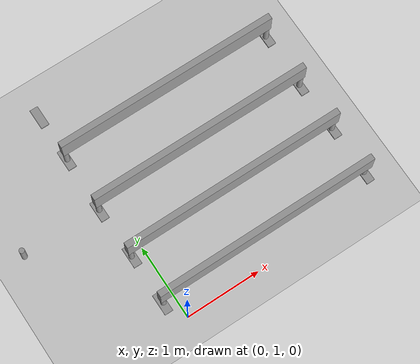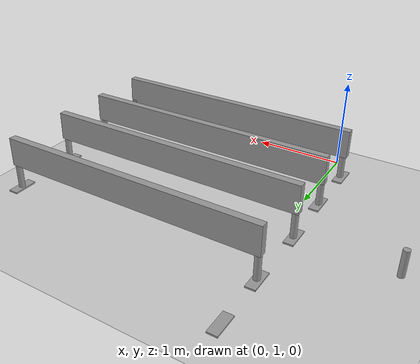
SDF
<sdf version="1.6">
 <world name="default">
  <model name="ground_plane">
   <static>1</static>
   <link name="link">
    <collision name="collision">
     <geometry><plane><normal>0 0 1</normal><size>100 100</size></plane></geometry>
     <surface><friction><ode><mu>100</mu><mu2>50</mu2></ode></friction></surface>
    </collision>
    <visual name="visual">
     <cast_shadows>0</cast_shadows>
     <geometry><plane><normal>0 0 1</normal><size>100 100</size></plane></geometry>
     <material>
      <script><uri>file://media/materials/scripts/gazebo.material</uri><name>Gazebo/Grey</name></script>
     </material>
    </visual>
   </link>
  </model>
  <model name="banchi">
   <link name="link_0_clone_10">
    <inertial>
     <mass>0.000785881</mass>
     <inertia>
      <ixx>5.11476e-06</ixx>
      <ixy>0</ixy>
      <ixz>0</ixz>
      <iyy>8.37345e-07</iyy>
      <iyz>0</iyz>
      <izz>5.8658e-06</izz>
     </inertia>
    </inertial>
    <pose>-0.67038 -5.15029 -0.495327 0 -0 0</pose>
    <visual name="visual">
     <geometry><box><size>0.110122 0.278282 0.025669</size></box></geometry>
     <material>
      <lighting>1</lighting>
      <script><uri>file://media/materials/scripts/gazebo.material</uri><name>Gazebo/Grey</name></script>
      <shader type="pixel"/>
     </material>
    </visual>
    <collision name="collision">
     <geometry><box><size>0.110122 0.278282 0.025669</size></box></geometry>
     <surface>
      <friction>
       <ode><mu>1</mu><mu2>1</mu2><fdir1>0 0 0</fdir1><slip1>0</slip1><slip2>0</slip2></ode>
       <torsional>
        <coefficient>1</coefficient>
        <patch_radius>0</patch_radius>
        <surface_radius>0</surface_radius>
        <use_patch_radius>1</use_patch_radius>
        <ode><slip>0</slip></ode>
       </torsional>
      </friction>
      <bounce><restitution_coefficient>0</restitution_coefficient><threshold>1e+06</threshold></bounce>
      <contact>
       <collide_without_contact>0</collide_without_contact>
       <collide_without_contact_bitmask>1</collide_without_contact_bitmask>
       <collide_bitmask>1</collide_bitmask>
       <ode>
        <soft_cfm>0</soft_cfm>
        <soft_erp>0.2</soft_erp>
        <kp>1e+13</kp>
        <kd>1</kd>
        <max_vel>0.01</max_vel>
        <min_depth>0</min_depth>
       </ode>
       <bullet>
        <split_impulse>1</split_impulse>
        <split_impulse_penetration_threshold>-0.01</split_impulse_penetration_threshold>
        <soft_cfm>0</soft_cfm>
        <soft_erp>0.2</soft_erp>
        <kp>1e+13</kp>
        <kd>1</kd>
       </bullet>
      </contact>
     </surface>
    </collision>
   </link>
   <link name="link_0_clone_2">
    <inertial>
     <mass>0.000785881</mass>
     <inertia>
      <ixx>5.11476e-06</ixx>
      <ixy>0</ixy>
      <ixz>0</ixz>
      <iyy>8.37345e-07</iyy>
      <iyz>0</iyz>
      <izz>5.8658e-06</izz>
     </inertia>
    </inertial>
    <pose>2.25946 -5.79798 -0.495327 0 -0 0</pose>
    <visual name="visual">
     <geometry><box><size>0.110122 0.278282 0.025669</size></box></geometry>
     <material>
      <lighting>1</lighting>
      <script><uri>file://media/materials/scripts/gazebo.material</uri><name>Gazebo/Grey</name></script>
      <shader type="pixel"/>
     </material>
    </visual>
    <collision name="collision">
     <geometry><box><size>0.110122 0.278282 0.025669</size></box></geometry>
     <surface>
      <friction>
       <ode><mu>1</mu><mu2>1</mu2><fdir1>0 0 0</fdir1><slip1>0</slip1><slip2>0</slip2></ode>
       <torsional>
        <coefficient>1</coefficient>
        <patch_radius>0</patch_radius>
        <surface_radius>0</surface_radius>
        <use_patch_radius>1</use_patch_radius>
        <ode><slip>0</slip></ode>
       </torsional>
      </friction>
      <bounce><restitution_coefficient>0</restitution_coefficient><threshold>1e+06</threshold></bounce>
      <contact>
       <collide_without_contact>0</collide_without_contact>
       <collide_without_contact_bitmask>1</collide_without_contact_bitmask>
       <collide_bitmask>1</collide_bitmask>
       <ode>
        <soft_cfm>0</soft_cfm>
        <soft_erp>0.2</soft_erp>
        <kp>1e+13</kp>
        <kd>1</kd>
        <max_vel>0.01</max_vel>
        <min_depth>0</min_depth>
       </ode>
       <bullet>
        <split_impulse>1</split_impulse>
        <split_impulse_penetration_threshold>-0.01</split_impulse_penetration_threshold>
        <soft_cfm>0</soft_cfm>
        <soft_erp>0.2</soft_erp>
        <kp>1e+13</kp>
        <kd>1</kd>
       </bullet>
      </contact>
     </surface>
    </collision>
   </link>
   <link name="link_0_clone_3">
    <inertial>
     <mass>0.000785881</mass>
     <inertia>
      <ixx>5.11476e-06</ixx>
      <ixy>0</ixy>
      <ixz>0</ixz>
      <iyy>8.37345e-07</iyy>
      <iyz>0</iyz>
      <izz>5.8658e-06</izz>
     </inertia>
    </inertial>
    <pose>2.2389 -6.5578 -0.495327 0 -0 0</pose>
    <visual name="visual">
     <geometry><box><size>0.110122 0.278282 0.025669</size></box></geometry>
     <material>
      <lighting>1</lighting>
      <script><uri>file://media/materials/scripts/gazebo.material</uri><name>Gazebo/Grey</name></script>
      <shader type="pixel"/>
     </material>
    </visual>
    <collision name="collision">
     <geometry><box><size>0.110122 0.278282 0.025669</size></box></geometry>
     <surface>
      <friction>
       <ode><mu>1</mu><mu2>1</mu2><fdir1>0 0 0</fdir1><slip1>0</slip1><slip2>0</slip2></ode>
       <torsional>
        <coefficient>1</coefficient>
        <patch_radius>0</patch_radius>
        <surface_radius>0</surface_radius>
        <use_patch_radius>1</use_patch_radius>
        <ode><slip>0</slip></ode>
       </torsional>
      </friction>
      <bounce><restitution_coefficient>0</restitution_coefficient><threshold>1e+06</threshold></bounce>
      <contact>
       <collide_without_contact>0</collide_without_contact>
       <collide_without_contact_bitmask>1</collide_without_contact_bitmask>
       <collide_bitmask>1</collide_bitmask>
       <ode>
        <soft_cfm>0</soft_cfm>
        <soft_erp>0.2</soft_erp>
        <kp>1e+13</kp>
        <kd>1</kd>
        <max_vel>0.01</max_vel>
        <min_depth>0</min_depth>
       </ode>
       <bullet>
        <split_impulse>1</split_impulse>
        <split_impulse_penetration_threshold>-0.01</split_impulse_penetration_threshold>
        <soft_cfm>0</soft_cfm>
        <soft_erp>0.2</soft_erp>
        <kp>1e+13</kp>
        <kd>1</kd>
       </bullet>
      </contact>
     </surface>
    </collision>
   </link>
   <link name="link_0_clone_4">
    <inertial>
     <mass>0.000785881</mass>
     <inertia>
      <ixx>5.11476e-06</ixx>
      <ixy>0</ixy>
      <ixz>0</ixz>
      <iyy>8.37345e-07</iyy>
      <iyz>0</iyz>
      <izz>5.8658e-06</izz>
     </inertia>
    </inertial>
    <pose>2.25257 -7.24463 -0.495327 0 -0 0</pose>
    <visual name="visual">
     <geometry><box><size>0.110122 0.278282 0.025669</size></box></geometry>
     <material>
      <lighting>1</lighting>
      <script><uri>file://media/materials/scripts/gazebo.material</uri><name>Gazebo/Grey</name></script>
      <shader type="pixel"/>
     </material>
    </visual>
    <collision name="collision">
     <geometry><box><size>0.110122 0.278282 0.025669</size></box></geometry>
     <surface>
      <friction>
       <ode><mu>1</mu><mu2>1</mu2><fdir1>0 0 0</fdir1><slip1>0</slip1><slip2>0</slip2></ode>
       <torsional>
        <coefficient>1</coefficient>
        <patch_radius>0</patch_radius>
        <surface_radius>0</surface_radius>
        <use_patch_radius>1</use_patch_radius>
        <ode><slip>0</slip></ode>
       </torsional>
      </friction>
      <bounce><restitution_coefficient>0</restitution_coefficient><threshold>1e+06</threshold></bounce>
      <contact>
       <collide_without_contact>0</collide_without_contact>
       <collide_without_contact_bitmask>1</collide_without_contact_bitmask>
       <collide_bitmask>1</collide_bitmask>
       <ode>
        <soft_cfm>0</soft_cfm>
        <soft_erp>0.2</soft_erp>
        <kp>1e+13</kp>
        <kd>1</kd>
        <max_vel>0.01</max_vel>
        <min_depth>0</min_depth>
       </ode>
       <bullet>
        <split_impulse>1</split_impulse>
        <split_impulse_penetration_threshold>-0.01</split_impulse_penetration_threshold>
        <soft_cfm>0</soft_cfm>
        <soft_erp>0.2</soft_erp>
        <kp>1e+13</kp>
        <kd>1</kd>
       </bullet>
      </contact>
     </surface>
    </collision>
   </link>
   <link name="link_0_clone_5">
    <inertial>
     <mass>0.000785881</mass>
     <inertia>
      <ixx>5.11476e-06</ixx>
      <ixy>0</ixy>
      <ixz>0</ixz>
      <iyy>8.37345e-07</iyy>
      <iyz>0</iyz>
      <izz>5.8658e-06</izz>
     </inertia>
    </inertial>
    <pose>2.25123 -7.92961 -0.495327 0 -0 0</pose>
    <visual name="visual">
     <geometry><box><size>0.110122 0.278282 0.025669</size></box></geometry>
     <material>
      <lighting>1</lighting>
      <script><uri>file://media/materials/scripts/gazebo.material</uri><name>Gazebo/Grey</name></script>
      <shader type="pixel"/>
     </material>
    </visual>
    <collision name="collision">
     <geometry><box><size>0.110122 0.278282 0.025669</size></box></geometry>
     <surface>
      <friction>
       <ode><mu>1</mu><mu2>1</mu2><fdir1>0 0 0</fdir1><slip1>0</slip1><slip2>0</slip2></ode>
       <torsional>
        <coefficient>1</coefficient>
        <patch_radius>0</patch_radius>
        <surface_radius>0</surface_radius>
        <use_patch_radius>1</use_patch_radius>
        <ode><slip>0</slip></ode>
       </torsional>
      </friction>
      <bounce><restitution_coefficient>0</restitution_coefficient><threshold>1e+06</threshold></bounce>
      <contact>
       <collide_without_contact>0</collide_without_contact>
       <collide_without_contact_bitmask>1</collide_without_contact_bitmask>
       <collide_bitmask>1</collide_bitmask>
       <ode>
        <soft_cfm>0</soft_cfm>
        <soft_erp>0.2</soft_erp>
        <kp>1e+13</kp>
        <kd>1</kd>
        <max_vel>0.01</max_vel>
        <min_depth>0</min_depth>
       </ode>
       <bullet>
        <split_impulse>1</split_impulse>
        <split_impulse_penetration_threshold>-0.01</split_impulse_penetration_threshold>
        <soft_cfm>0</soft_cfm>
        <soft_erp>0.2</soft_erp>
        <kp>1e+13</kp>
        <kd>1</kd>
       </bullet>
      </contact>
     </surface>
    </collision>
   </link>
   <link name="link_0_clone_6">
    <inertial>
     <mass>0.000785881</mass>
     <inertia>
      <ixx>5.11476e-06</ixx>
      <ixy>0</ixy>
      <ixz>0</ixz>
      <iyy>8.37345e-07</iyy>
      <iyz>0</iyz>
      <izz>5.8658e-06</izz>
     </inertia>
    </inertial>
    <pose>-0.667679 -7.92898 -0.495327 0 -0 0</pose>
    <visual name="visual">
     <geometry><box><size>0.110122 0.278282 0.025669</size></box></geometry>
     <material>
      <lighting>1</lighting>
      <script><uri>file://media/materials/scripts/gazebo.material</uri><name>Gazebo/Grey</name></script>
      <shader type="pixel"/>
     </material>
    </visual>
    <collision name="collision">
     <geometry><box><size>0.110122 0.278282 0.025669</size></box></geometry>
     <surface>
      <friction>
       <ode><mu>1</mu><mu2>1</mu2><fdir1>0 0 0</fdir1><slip1>0</slip1><slip2>0</slip2></ode>
       <torsional>
        <coefficient>1</coefficient>
        <patch_radius>0</patch_radius>
        <surface_radius>0</surface_radius>
        <use_patch_radius>1</use_patch_radius>
        <ode><slip>0</slip></ode>
       </torsional>
      </friction>
      <bounce><restitution_coefficient>0</restitution_coefficient><threshold>1e+06</threshold></bounce>
      <contact>
       <collide_without_contact>0</collide_without_contact>
       <collide_without_contact_bitmask>1</collide_without_contact_bitmask>
       <collide_bitmask>1</collide_bitmask>
       <ode>
        <soft_cfm>0</soft_cfm>
        <soft_erp>0.2</soft_erp>
        <kp>1e+13</kp>
        <kd>1</kd>
        <max_vel>0.01</max_vel>
        <min_depth>0</min_depth>
       </ode>
       <bullet>
        <split_impulse>1</split_impulse>
        <split_impulse_penetration_threshold>-0.01</split_impulse_penetration_threshold>
        <soft_cfm>0</soft_cfm>
        <soft_erp>0.2</soft_erp>
        <kp>1e+13</kp>
        <kd>1</kd>
       </bullet>
      </contact>
     </surface>
    </collision>
   </link>
   <link name="link_0_clone_7">
    <inertial>
     <mass>0.000785881</mass>
     <inertia>
      <ixx>5.11476e-06</ixx>
      <ixy>0</ixy>
      <ixz>0</ixz>
      <iyy>8.37345e-07</iyy>
      <iyz>0</iyz>
      <izz>5.8658e-06</izz>
     </inertia>
    </inertial>
    <pose>-0.663477 -7.25184 -0.495327 0 -0 0</pose>
    <visual name="visual">
     <geometry><box><size>0.110122 0.278282 0.025669</size></box></geometry>
     <material>
      <lighting>1</lighting>
      <script><uri>file://media/materials/scripts/gazebo.material</uri><name>Gazebo/Grey</name></script>
      <shader type="pixel"/>
     </material>
    </visual>
    <collision name="collision">
     <geometry><box><size>0.110122 0.278282 0.025669</size></box></geometry>
     <surface>
      <friction>
       <ode><mu>1</mu><mu2>1</mu2><fdir1>0 0 0</fdir1><slip1>0</slip1><slip2>0</slip2></ode>
       <torsional>
        <coefficient>1</coefficient>
        <patch_radius>0</patch_radius>
        <surface_radius>0</surface_radius>
        <use_patch_radius>1</use_patch_radius>
        <ode><slip>0</slip></ode>
       </torsional>
      </friction>
      <bounce><restitution_coefficient>0</restitution_coefficient><threshold>1e+06</threshold></bounce>
      <contact>
       <collide_without_contact>0</collide_without_contact>
       <collide_without_contact_bitmask>1</collide_without_contact_bitmask>
       <collide_bitmask>1</collide_bitmask>
       <ode>
        <soft_cfm>0</soft_cfm>
        <soft_erp>0.2</soft_erp>
        <kp>1e+13</kp>
        <kd>1</kd>
        <max_vel>0.01</max_vel>
        <min_depth>0</min_depth>
       </ode>
       <bullet>
        <split_impulse>1</split_impulse>
        <split_impulse_penetration_threshold>-0.01</split_impulse_penetration_threshold>
        <soft_cfm>0</soft_cfm>
        <soft_erp>0.2</soft_erp>
        <kp>1e+13</kp>
        <kd>1</kd>
       </bullet>
      </contact>
     </surface>
    </collision>
   </link>
   <link name="link_0_clone_8">
    <inertial>
     <mass>0.000785881</mass>
     <inertia>
      <ixx>5.11476e-06</ixx>
      <ixy>0</ixy>
      <ixz>0</ixz>
      <iyy>8.37345e-07</iyy>
      <iyz>0</iyz>
      <izz>5.8658e-06</izz>
     </inertia>
    </inertial>
    <pose>-0.687116 -6.5613 -0.495327 0 -0 0</pose>
    <visual name="visual">
     <geometry><box><size>0.110122 0.278282 0.025669</size></box></geometry>
     <material>
      <lighting>1</lighting>
      <script><uri>file://media/materials/scripts/gazebo.material</uri><name>Gazebo/Grey</name></script>
      <shader type="pixel"/>
     </material>
    </visual>
    <collision name="collision">
     <geometry><box><size>0.110122 0.278282 0.025669</size></box></geometry>
     <surface>
      <friction>
       <ode><mu>1</mu><mu2>1</mu2><fdir1>0 0 0</fdir1><slip1>0</slip1><slip2>0</slip2></ode>
       <torsional>
        <coefficient>1</coefficient>
        <patch_radius>0</patch_radius>
        <surface_radius>0</surface_radius>
        <use_patch_radius>1</use_patch_radius>
        <ode><slip>0</slip></ode>
       </torsional>
      </friction>
      <bounce><restitution_coefficient>0</restitution_coefficient><threshold>1e+06</threshold></bounce>
      <contact>
       <collide_without_contact>0</collide_without_contact>
       <collide_without_contact_bitmask>1</collide_without_contact_bitmask>
       <collide_bitmask>1</collide_bitmask>
       <ode>
        <soft_cfm>0</soft_cfm>
        <soft_erp>0.2</soft_erp>
        <kp>1e+13</kp>
        <kd>1</kd>
        <max_vel>0.01</max_vel>
        <min_depth>0</min_depth>
       </ode>
       <bullet>
        <split_impulse>1</split_impulse>
        <split_impulse_penetration_threshold>-0.01</split_impulse_penetration_threshold>
        <soft_cfm>0</soft_cfm>
        <soft_erp>0.2</soft_erp>
        <kp>1e+13</kp>
        <kd>1</kd>
       </bullet>
      </contact>
     </surface>
    </collision>
   </link>
   <link name="link_0_clone_9">
    <inertial>
     <mass>0.000785881</mass>
     <inertia>
      <ixx>5.11476e-06</ixx>
      <ixy>0</ixy>
      <ixz>0</ixz>
      <iyy>8.37345e-07</iyy>
      <iyz>0</iyz>
      <izz>5.8658e-06</izz>
     </inertia>
    </inertial>
    <pose>-0.67421 -5.79412 -0.495327 0 -0 0</pose>
    <visual name="visual">
     <geometry><box><size>0.110122 0.278282 0.025669</size></box></geometry>
     <material>
      <lighting>1</lighting>
      <script><uri>file://media/materials/scripts/gazebo.material</uri><name>Gazebo/Grey</name></script>
      <shader type="pixel"/>
     </material>
    </visual>
    <collision name="collision">
     <geometry><box><size>0.110122 0.278282 0.025669</size></box></geometry>
     <surface>
      <friction>
       <ode><mu>1</mu><mu2>1</mu2><fdir1>0 0 0</fdir1><slip1>0</slip1><slip2>0</slip2></ode>
       <torsional>
        <coefficient>1</coefficient>
        <patch_radius>0</patch_radius>
        <surface_radius>0</surface_radius>
        <use_patch_radius>1</use_patch_radius>
        <ode><slip>0</slip></ode>
       </torsional>
      </friction>
      <bounce><restitution_coefficient>0</restitution_coefficient><threshold>1e+06</threshold></bounce>
      <contact>
       <collide_without_contact>0</collide_without_contact>
       <collide_without_contact_bitmask>1</collide_without_contact_bitmask>
       <collide_bitmask>1</collide_bitmask>
       <ode>
        <soft_cfm>0</soft_cfm>
        <soft_erp>0.2</soft_erp>
        <kp>1e+13</kp>
        <kd>1</kd>
        <max_vel>0.01</max_vel>
        <min_depth>0</min_depth>
       </ode>
       <bullet>
        <split_impulse>1</split_impulse>
        <split_impulse_penetration_threshold>-0.01</split_impulse_penetration_threshold>
        <soft_cfm>0</soft_cfm>
        <soft_erp>0.2</soft_erp>
        <kp>1e+13</kp>
        <kd>1</kd>
       </bullet>
      </contact>
     </surface>
    </collision>
   </link>
   <link name="link_6_clone_clone_1">
    <pose>0.790452 -5.7947 -0.037275 0 -0 0</pose>
    <inertial>
     <mass>0.0822689</mass>
     <inertia>
      <ixx>0.00690216</ixx>
      <ixy>0</ixy>
      <ixz>0</ixz>
      <iyy>0.0137115</iyy>
      <iyz>0</iyz>
      <izz>0.00690216</izz>
     </inertia>
    </inertial>
    <visual name="visual">
     <geometry><box><size>3 0.082269 0.32559</size></box></geometry>
     <material>
      <lighting>1</lighting>
      <script><uri>file://media/materials/scripts/gazebo.material</uri><name>Gazebo/Grey</name></script>
      <ambient>0.3 0.3 0.3 1</ambient>
      <diffuse>0.7 0.7 0.7 1</diffuse>
      <specular>0.01 0.01 0.01 1</specular>
      <emissive>0 0 0 1</emissive>
      <shader type="vertex"><normal_map>__default__</normal_map></shader>
     </material>
    </visual>
    <collision name="collision">
     <geometry><box><size>3 0.082269 0.32559</size></box></geometry>
     <surface>
      <friction>
       <ode><mu>1</mu><mu2>1</mu2><fdir1>0 0 0</fdir1><slip1>0</slip1><slip2>0</slip2></ode>
       <torsional>
        <coefficient>1</coefficient>
        <patch_radius>0</patch_radius>
        <surface_radius>0</surface_radius>
        <use_patch_radius>1</use_patch_radius>
        <ode><slip>0</slip></ode>
       </torsional>
      </friction>
      <bounce><restitution_coefficient>0</restitution_coefficient><threshold>1e+06</threshold></bounce>
      <contact>
       <collide_without_contact>0</collide_without_contact>
       <collide_without_contact_bitmask>1</collide_without_contact_bitmask>
       <collide_bitmask>1</collide_bitmask>
       <ode>
        <soft_cfm>0</soft_cfm>
        <soft_erp>0.2</soft_erp>
        <kp>1e+13</kp>
        <kd>1</kd>
        <max_vel>0.01</max_vel>
        <min_depth>0</min_depth>
       </ode>
       <bullet>
        <split_impulse>1</split_impulse>
        <split_impulse_penetration_threshold>-0.01</split_impulse_penetration_threshold>
        <soft_cfm>0</soft_cfm>
        <soft_erp>0.2</soft_erp>
        <kp>1e+13</kp>
        <kd>1</kd>
       </bullet>
      </contact>
     </surface>
    </collision>
   </link>
   <link name="link_6_clone_clone_2">
    <pose>0.7731 -6.55478 -0.030557 0 -0 0</pose>
    <inertial>
     <mass>0.0822689</mass>
     <inertia>
      <ixx>0.00690216</ixx>
      <ixy>0</ixy>
      <ixz>0</ixz>
      <iyy>0.0137115</iyy>
      <iyz>0</iyz>
      <izz>0.00690216</izz>
     </inertia>
    </inertial>
    <visual name="visual">
     <geometry><box><size>3 0.082269 0.32559</size></box></geometry>
     <material>
      <lighting>1</lighting>
      <script><uri>file://media/materials/scripts/gazebo.material</uri><name>Gazebo/Grey</name></script>
      <ambient>0.3 0.3 0.3 1</ambient>
      <diffuse>0.7 0.7 0.7 1</diffuse>
      <specular>0.01 0.01 0.01 1</specular>
      <emissive>0 0 0 1</emissive>
      <shader type="vertex"><normal_map>__default__</normal_map></shader>
     </material>
    </visual>
    <collision name="collision">
     <geometry><box><size>3 0.082269 0.32559</size></box></geometry>
     <surface>
      <friction>
       <ode><mu>1</mu><mu2>1</mu2><fdir1>0 0 0</fdir1><slip1>0</slip1><slip2>0</slip2></ode>
       <torsional>
        <coefficient>1</coefficient>
        <patch_radius>0</patch_radius>
        <surface_radius>0</surface_radius>
        <use_patch_radius>1</use_patch_radius>
        <ode><slip>0</slip></ode>
       </torsional>
      </friction>
      <bounce><restitution_coefficient>0</restitution_coefficient><threshold>1e+06</threshold></bounce>
      <contact>
       <collide_without_contact>0</collide_without_contact>
       <collide_without_contact_bitmask>1</collide_without_contact_bitmask>
       <collide_bitmask>1</collide_bitmask>
       <ode>
        <soft_cfm>0</soft_cfm>
        <soft_erp>0.2</soft_erp>
        <kp>1e+13</kp>
        <kd>1</kd>
        <max_vel>0.01</max_vel>
        <min_depth>0</min_depth>
       </ode>
       <bullet>
        <split_impulse>1</split_impulse>
        <split_impulse_penetration_threshold>-0.01</split_impulse_penetration_threshold>
        <soft_cfm>0</soft_cfm>
        <soft_erp>0.2</soft_erp>
        <kp>1e+13</kp>
        <kd>1</kd>
       </bullet>
      </contact>
     </surface>
    </collision>
   </link>
   <link name="link_6_clone_clone_3">
    <pose>0.787315 -7.24478 -0.053907 0 -0 0</pose>
    <inertial>
     <mass>0.0822689</mass>
     <inertia>
      <ixx>0.00690216</ixx>
      <ixy>0</ixy>
      <ixz>0</ixz>
      <iyy>0.0137115</iyy>
      <iyz>0</iyz>
      <izz>0.00690216</izz>
     </inertia>
    </inertial>
    <visual name="visual">
     <geometry><box><size>3 0.082269 0.32559</size></box></geometry>
     <material>
      <lighting>1</lighting>
      <script><uri>file://media/materials/scripts/gazebo.material</uri><name>Gazebo/Grey</name></script>
      <ambient>0.3 0.3 0.3 1</ambient>
      <diffuse>0.7 0.7 0.7 1</diffuse>
      <specular>0.01 0.01 0.01 1</specular>
      <emissive>0 0 0 1</emissive>
      <shader type="vertex"><normal_map>__default__</normal_map></shader>
     </material>
    </visual>
    <collision name="collision">
     <geometry><box><size>3 0.082269 0.32559</size></box></geometry>
     <surface>
      <friction>
       <ode><mu>1</mu><mu2>1</mu2><fdir1>0 0 0</fdir1><slip1>0</slip1><slip2>0</slip2></ode>
       <torsional>
        <coefficient>1</coefficient>
        <patch_radius>0</patch_radius>
        <surface_radius>0</surface_radius>
        <use_patch_radius>1</use_patch_radius>
        <ode><slip>0</slip></ode>
       </torsional>
      </friction>
      <bounce><restitution_coefficient>0</restitution_coefficient><threshold>1e+06</threshold></bounce>
      <contact>
       <collide_without_contact>0</collide_without_contact>
       <collide_without_contact_bitmask>1</collide_without_contact_bitmask>
       <collide_bitmask>1</collide_bitmask>
       <ode>
        <soft_cfm>0</soft_cfm>
        <soft_erp>0.2</soft_erp>
        <kp>1e+13</kp>
        <kd>1</kd>
        <max_vel>0.01</max_vel>
        <min_depth>0</min_depth>
       </ode>
       <bullet>
        <split_impulse>1</split_impulse>
        <split_impulse_penetration_threshold>-0.01</split_impulse_penetration_threshold>
        <soft_cfm>0</soft_cfm>
        <soft_erp>0.2</soft_erp>
        <kp>1e+13</kp>
        <kd>1</kd>
       </bullet>
      </contact>
     </surface>
    </collision>
   </link>
   <link name="link_6_clone_clone_3_clone">
    <pose>0.794683 -7.93344 -0.056654 0 -0 0</pose>
    <inertial>
     <mass>0.0822689</mass>
     <inertia>
      <ixx>0.00690216</ixx>
      <ixy>0</ixy>
      <ixz>0</ixz>
      <iyy>0.0137115</iyy>
      <iyz>0</iyz>
      <izz>0.00690216</izz>
     </inertia>
    </inertial>
    <visual name="visual">
     <geometry><box><size>3 0.082269 0.32559</size></box></geometry>
     <material>
      <lighting>1</lighting>
      <script><uri>file://media/materials/scripts/gazebo.material</uri><name>Gazebo/Grey</name></script>
      <ambient>0.3 0.3 0.3 1</ambient>
      <diffuse>0.7 0.7 0.7 1</diffuse>
      <specular>0.01 0.01 0.01 1</specular>
      <emissive>0 0 0 1</emissive>
      <shader type="vertex"><normal_map>__default__</normal_map></shader>
     </material>
    </visual>
    <collision name="collision">
     <geometry><box><size>3 0.082269 0.32559</size></box></geometry>
     <surface>
      <friction>
       <ode><mu>1</mu><mu2>1</mu2><fdir1>0 0 0</fdir1><slip1>0</slip1><slip2>0</slip2></ode>
       <torsional>
        <coefficient>1</coefficient>
        <patch_radius>0</patch_radius>
        <surface_radius>0</surface_radius>
        <use_patch_radius>1</use_patch_radius>
        <ode><slip>0</slip></ode>
       </torsional>
      </friction>
      <bounce><restitution_coefficient>0</restitution_coefficient><threshold>1e+06</threshold></bounce>
      <contact>
       <collide_without_contact>0</collide_without_contact>
       <collide_without_contact_bitmask>1</collide_without_contact_bitmask>
       <collide_bitmask>1</collide_bitmask>
       <ode>
        <soft_cfm>0</soft_cfm>
        <soft_erp>0.2</soft_erp>
        <kp>1e+13</kp>
        <kd>1</kd>
        <max_vel>0.01</max_vel>
        <min_depth>0</min_depth>
       </ode>
       <bullet>
        <split_impulse>1</split_impulse>
        <split_impulse_penetration_threshold>-0.01</split_impulse_penetration_threshold>
        <soft_cfm>0</soft_cfm>
        <soft_erp>0.2</soft_erp>
        <kp>1e+13</kp>
        <kd>1</kd>
       </bullet>
      </contact>
     </surface>
    </collision>
   </link>
   <link name="link_7_clone_2">
    <pose>-1.7324 -6.54856 -0.35106 0 -0 0</pose>
    <inertial>
     <mass>0.00501927</mass>
     <inertia>
      <ixx>0.000419846</ixx>
      <ixy>0</ixy>
      <ixz>0</ixz>
      <iyy>0.000419846</iyy>
      <iyz>0</iyz>
      <izz>3.14914e-06</izz>
     </inertia>
    </inertial>
    <visual name="visual">
     <geometry><cylinder><radius>0.0354247</radius><length>0.3</length></cylinder></geometry>
     <material>
      <lighting>1</lighting>
      <script><uri>file://media/materials/scripts/gazebo.material</uri><name>Gazebo/Grey</name></script>
      <ambient>0.3 0.3 0.3 1</ambient>
      <diffuse>0.7 0.7 0.7 1</diffuse>
      <specular>0.01 0.01 0.01 1</specular>
      <emissive>0 0 0 1</emissive>
      <shader type="vertex"><normal_map>__default__</normal_map></shader>
     </material>
    </visual>
    <collision name="collision">
     <geometry><cylinder><radius>0.035425</radius><length>0.3</length></cylinder></geometry>
     <surface>
      <friction>
       <ode><mu>1</mu><mu2>1</mu2><fdir1>0 0 0</fdir1><slip1>0</slip1><slip2>0</slip2></ode>
       <torsional>
        <coefficient>1</coefficient>
        <patch_radius>0</patch_radius>
        <surface_radius>0</surface_radius>
        <use_patch_radius>1</use_patch_radius>
        <ode><slip>0</slip></ode>
       </torsional>
      </friction>
      <bounce><restitution_coefficient>0</restitution_coefficient><threshold>1e+06</threshold></bounce>
      <contact>
       <collide_without_contact>0</collide_without_contact>
       <collide_without_contact_bitmask>1</collide_without_contact_bitmask>
       <collide_bitmask>1</collide_bitmask>
       <ode>
        <soft_cfm>0</soft_cfm>
        <soft_erp>0.2</soft_erp>
        <kp>1e+13</kp>
        <kd>1</kd>
        <max_vel>0.01</max_vel>
        <min_depth>0</min_depth>
       </ode>
       <bullet>
        <split_impulse>1</split_impulse>
        <split_impulse_penetration_threshold>-0.01</split_impulse_penetration_threshold>
        <soft_cfm>0</soft_cfm>
        <soft_erp>0.2</soft_erp>
        <kp>1e+13</kp>
        <kd>1</kd>
       </bullet>
      </contact>
     </surface>
    </collision>
   </link>
   <link name="link_7_clone_2_clone_10">
    <pose>-0.655606 -7.92801 -0.336514 0 -0 0</pose>
    <inertial>
     <mass>0.00501927</mass>
     <inertia>
      <ixx>0.000419846</ixx>
      <ixy>0</ixy>
      <ixz>0</ixz>
      <iyy>0.000419846</iyy>
      <iyz>0</iyz>
      <izz>3.14914e-06</izz>
     </inertia>
    </inertial>
    <visual name="visual">
     <geometry><cylinder><radius>0.0354247</radius><length>0.3</length></cylinder></geometry>
     <material>
      <lighting>1</lighting>
      <script><uri>file://media/materials/scripts/gazebo.material</uri><name>Gazebo/Grey</name></script>
      <ambient>0.3 0.3 0.3 1</ambient>
      <diffuse>0.7 0.7 0.7 1</diffuse>
      <specular>0.01 0.01 0.01 1</specular>
      <emissive>0 0 0 1</emissive>
      <shader type="vertex"><normal_map>__default__</normal_map></shader>
     </material>
    </visual>
    <collision name="collision">
     <geometry><cylinder><radius>0.035425</radius><length>0.3</length></cylinder></geometry>
     <surface>
      <friction>
       <ode><mu>1</mu><mu2>1</mu2><fdir1>0 0 0</fdir1><slip1>0</slip1><slip2>0</slip2></ode>
       <torsional>
        <coefficient>1</coefficient>
        <patch_radius>0</patch_radius>
        <surface_radius>0</surface_radius>
        <use_patch_radius>1</use_patch_radius>
        <ode><slip>0</slip></ode>
       </torsional>
      </friction>
      <bounce><restitution_coefficient>0</restitution_coefficient><threshold>1e+06</threshold></bounce>
      <contact>
       <collide_without_contact>0</collide_without_contact>
       <collide_without_contact_bitmask>1</collide_without_contact_bitmask>
       <collide_bitmask>1</collide_bitmask>
       <ode>
        <soft_cfm>0</soft_cfm>
        <soft_erp>0.2</soft_erp>
        <kp>1e+13</kp>
        <kd>1</kd>
        <max_vel>0.01</max_vel>
        <min_depth>0</min_depth>
       </ode>
       <bullet>
        <split_impulse>1</split_impulse>
        <split_impulse_penetration_threshold>-0.01</split_impulse_penetration_threshold>
        <soft_cfm>0</soft_cfm>
        <soft_erp>0.2</soft_erp>
        <kp>1e+13</kp>
        <kd>1</kd>
       </bullet>
      </contact>
     </surface>
    </collision>
   </link>
   <link name="link_7_clone_2_clone_11">
    <pose>2.25088 -7.91964 -0.335799 0 -0 0</pose>
    <inertial>
     <mass>0.00501927</mass>
     <inertia>
      <ixx>0.000419846</ixx>
      <ixy>0</ixy>
      <ixz>0</ixz>
      <iyy>0.000419846</iyy>
      <iyz>0</iyz>
      <izz>3.14914e-06</izz>
     </inertia>
    </inertial>
    <visual name="visual">
     <geometry><cylinder><radius>0.0354247</radius><length>0.3</length></cylinder></geometry>
     <material>
      <lighting>1</lighting>
      <script><uri>file://media/materials/scripts/gazebo.material</uri><name>Gazebo/Grey</name></script>
      <ambient>0.3 0.3 0.3 1</ambient>
      <diffuse>0.7 0.7 0.7 1</diffuse>
      <specular>0.01 0.01 0.01 1</specular>
      <emissive>0 0 0 1</emissive>
      <shader type="vertex"><normal_map>__default__</normal_map></shader>
     </material>
    </visual>
    <collision name="collision">
     <geometry><cylinder><radius>0.035425</radius><length>0.3</length></cylinder></geometry>
     <surface>
      <friction>
       <ode><mu>1</mu><mu2>1</mu2><fdir1>0 0 0</fdir1><slip1>0</slip1><slip2>0</slip2></ode>
       <torsional>
        <coefficient>1</coefficient>
        <patch_radius>0</patch_radius>
        <surface_radius>0</surface_radius>
        <use_patch_radius>1</use_patch_radius>
        <ode><slip>0</slip></ode>
       </torsional>
      </friction>
      <bounce><restitution_coefficient>0</restitution_coefficient><threshold>1e+06</threshold></bounce>
      <contact>
       <collide_without_contact>0</collide_without_contact>
       <collide_without_contact_bitmask>1</collide_without_contact_bitmask>
       <collide_bitmask>1</collide_bitmask>
       <ode>
        <soft_cfm>0</soft_cfm>
        <soft_erp>0.2</soft_erp>
        <kp>1e+13</kp>
        <kd>1</kd>
        <max_vel>0.01</max_vel>
        <min_depth>0</min_depth>
       </ode>
       <bullet>
        <split_impulse>1</split_impulse>
        <split_impulse_penetration_threshold>-0.01</split_impulse_penetration_threshold>
        <soft_cfm>0</soft_cfm>
        <soft_erp>0.2</soft_erp>
        <kp>1e+13</kp>
        <kd>1</kd>
       </bullet>
      </contact>
     </surface>
    </collision>
   </link>
   <link name="link_7_clone_2_clone_12">
    <pose>2.24774 -7.24315 -0.337741 0 -0 0</pose>
    <inertial>
     <mass>0.00501927</mass>
     <inertia>
      <ixx>0.000419846</ixx>
      <ixy>0</ixy>
      <ixz>0</ixz>
      <iyy>0.000419846</iyy>
      <iyz>0</iyz>
      <izz>3.14914e-06</izz>
     </inertia>
    </inertial>
    <visual name="visual">
     <geometry><cylinder><radius>0.0354247</radius><length>0.3</length></cylinder></geometry>
     <material>
      <lighting>1</lighting>
      <script><uri>file://media/materials/scripts/gazebo.material</uri><name>Gazebo/Grey</name></script>
      <ambient>0.3 0.3 0.3 1</ambient>
      <diffuse>0.7 0.7 0.7 1</diffuse>
      <specular>0.01 0.01 0.01 1</specular>
      <emissive>0 0 0 1</emissive>
      <shader type="vertex"><normal_map>__default__</normal_map></shader>
     </material>
    </visual>
    <collision name="collision">
     <geometry><cylinder><radius>0.035425</radius><length>0.3</length></cylinder></geometry>
     <surface>
      <friction>
       <ode><mu>1</mu><mu2>1</mu2><fdir1>0 0 0</fdir1><slip1>0</slip1><slip2>0</slip2></ode>
       <torsional>
        <coefficient>1</coefficient>
        <patch_radius>0</patch_radius>
        <surface_radius>0</surface_radius>
        <use_patch_radius>1</use_patch_radius>
        <ode><slip>0</slip></ode>
       </torsional>
      </friction>
      <bounce><restitution_coefficient>0</restitution_coefficient><threshold>1e+06</threshold></bounce>
      <contact>
       <collide_without_contact>0</collide_without_contact>
       <collide_without_contact_bitmask>1</collide_without_contact_bitmask>
       <collide_bitmask>1</collide_bitmask>
       <ode>
        <soft_cfm>0</soft_cfm>
        <soft_erp>0.2</soft_erp>
        <kp>1e+13</kp>
        <kd>1</kd>
        <max_vel>0.01</max_vel>
        <min_depth>0</min_depth>
       </ode>
       <bullet>
        <split_impulse>1</split_impulse>
        <split_impulse_penetration_threshold>-0.01</split_impulse_penetration_threshold>
        <soft_cfm>0</soft_cfm>
        <soft_erp>0.2</soft_erp>
        <kp>1e+13</kp>
        <kd>1</kd>
       </bullet>
      </contact>
     </surface>
    </collision>
   </link>
   <link name="link_7_clone_2_clone_13">
    <pose>2.23942 -6.55834 -0.334351 0 -0 0</pose>
    <inertial>
     <mass>0.00501927</mass>
     <inertia>
      <ixx>0.000419846</ixx>
      <ixy>0</ixy>
      <ixz>0</ixz>
      <iyy>0.000419846</iyy>
      <iyz>0</iyz>
      <izz>3.14914e-06</izz>
     </inertia>
    </inertial>
    <visual name="visual">
     <geometry><cylinder><radius>0.0354247</radius><length>0.3</length></cylinder></geometry>
     <material>
      <lighting>1</lighting>
      <script><uri>file://media/materials/scripts/gazebo.material</uri><name>Gazebo/Grey</name></script>
      <ambient>0.3 0.3 0.3 1</ambient>
      <diffuse>0.7 0.7 0.7 1</diffuse>
      <specular>0.01 0.01 0.01 1</specular>
      <emissive>0 0 0 1</emissive>
      <shader type="vertex"><normal_map>__default__</normal_map></shader>
     </material>
    </visual>
    <collision name="collision">
     <geometry><cylinder><radius>0.035425</radius><length>0.3</length></cylinder></geometry>
     <surface>
      <friction>
       <ode><mu>1</mu><mu2>1</mu2><fdir1>0 0 0</fdir1><slip1>0</slip1><slip2>0</slip2></ode>
       <torsional>
        <coefficient>1</coefficient>
        <patch_radius>0</patch_radius>
        <surface_radius>0</surface_radius>
        <use_patch_radius>1</use_patch_radius>
        <ode><slip>0</slip></ode>
       </torsional>
      </friction>
      <bounce><restitution_coefficient>0</restitution_coefficient><threshold>1e+06</threshold></bounce>
      <contact>
       <collide_without_contact>0</collide_without_contact>
       <collide_without_contact_bitmask>1</collide_without_contact_bitmask>
       <collide_bitmask>1</collide_bitmask>
       <ode>
        <soft_cfm>0</soft_cfm>
        <soft_erp>0.2</soft_erp>
        <kp>1e+13</kp>
        <kd>1</kd>
        <max_vel>0.01</max_vel>
        <min_depth>0</min_depth>
       </ode>
       <bullet>
        <split_impulse>1</split_impulse>
        <split_impulse_penetration_threshold>-0.01</split_impulse_penetration_threshold>
        <soft_cfm>0</soft_cfm>
        <soft_erp>0.2</soft_erp>
        <kp>1e+13</kp>
        <kd>1</kd>
       </bullet>
      </contact>
     </surface>
    </collision>
   </link>
   <link name="link_7_clone_2_clone_14">
    <pose>2.25699 -5.79563 -0.34167 0 -0 0</pose>
    <inertial>
     <mass>0.00501927</mass>
     <inertia>
      <ixx>0.000419846</ixx>
      <ixy>0</ixy>
      <ixz>0</ixz>
      <iyy>0.000419846</iyy>
      <iyz>0</iyz>
      <izz>3.14914e-06</izz>
     </inertia>
    </inertial>
    <visual name="visual">
     <geometry><cylinder><radius>0.0354247</radius><length>0.3</length></cylinder></geometry>
     <material>
      <lighting>1</lighting>
      <script><uri>file://media/materials/scripts/gazebo.material</uri><name>Gazebo/Grey</name></script>
      <ambient>0.3 0.3 0.3 1</ambient>
      <diffuse>0.7 0.7 0.7 1</diffuse>
      <specular>0.01 0.01 0.01 1</specular>
      <emissive>0 0 0 1</emissive>
      <shader type="vertex"><normal_map>__default__</normal_map></shader>
     </material>
    </visual>
    <collision name="collision">
     <geometry><cylinder><radius>0.035425</radius><length>0.3</length></cylinder></geometry>
     <surface>
      <friction>
       <ode><mu>1</mu><mu2>1</mu2><fdir1>0 0 0</fdir1><slip1>0</slip1><slip2>0</slip2></ode>
       <torsional>
        <coefficient>1</coefficient>
        <patch_radius>0</patch_radius>
        <surface_radius>0</surface_radius>
        <use_patch_radius>1</use_patch_radius>
        <ode><slip>0</slip></ode>
       </torsional>
      </friction>
      <bounce><restitution_coefficient>0</restitution_coefficient><threshold>1e+06</threshold></bounce>
      <contact>
       <collide_without_contact>0</collide_without_contact>
       <collide_without_contact_bitmask>1</collide_without_contact_bitmask>
       <collide_bitmask>1</collide_bitmask>
       <ode>
        <soft_cfm>0</soft_cfm>
        <soft_erp>0.2</soft_erp>
        <kp>1e+13</kp>
        <kd>1</kd>
        <max_vel>0.01</max_vel>
        <min_depth>0</min_depth>
       </ode>
       <bullet>
        <split_impulse>1</split_impulse>
        <split_impulse_penetration_threshold>-0.01</split_impulse_penetration_threshold>
        <soft_cfm>0</soft_cfm>
        <soft_erp>0.2</soft_erp>
        <kp>1e+13</kp>
        <kd>1</kd>
       </bullet>
      </contact>
     </surface>
    </collision>
   </link>
   <link name="link_7_clone_2_clone_7">
    <pose>-0.668755 -5.79845 -0.337459 0 -0 0</pose>
    <inertial>
     <mass>0.00501927</mass>
     <inertia>
      <ixx>0.000419846</ixx>
      <ixy>0</ixy>
      <ixz>0</ixz>
      <iyy>0.000419846</iyy>
      <iyz>0</iyz>
      <izz>3.14914e-06</izz>
     </inertia>
    </inertial>
    <visual name="visual">
     <geometry><cylinder><radius>0.0354247</radius><length>0.3</length></cylinder></geometry>
     <material>
      <lighting>1</lighting>
      <script><uri>file://media/materials/scripts/gazebo.material</uri><name>Gazebo/Grey</name></script>
      <ambient>0.3 0.3 0.3 1</ambient>
      <diffuse>0.7 0.7 0.7 1</diffuse>
      <specular>0.01 0.01 0.01 1</specular>
      <emissive>0 0 0 1</emissive>
      <shader type="vertex"><normal_map>__default__</normal_map></shader>
     </material>
    </visual>
    <collision name="collision">
     <geometry><cylinder><radius>0.035425</radius><length>0.3</length></cylinder></geometry>
     <surface>
      <friction>
       <ode><mu>1</mu><mu2>1</mu2><fdir1>0 0 0</fdir1><slip1>0</slip1><slip2>0</slip2></ode>
       <torsional>
        <coefficient>1</coefficient>
        <patch_radius>0</patch_radius>
        <surface_radius>0</surface_radius>
        <use_patch_radius>1</use_patch_radius>
        <ode><slip>0</slip></ode>
       </torsional>
      </friction>
      <bounce><restitution_coefficient>0</restitution_coefficient><threshold>1e+06</threshold></bounce>
      <contact>
       <collide_without_contact>0</collide_without_contact>
       <collide_without_contact_bitmask>1</collide_without_contact_bitmask>
       <collide_bitmask>1</collide_bitmask>
       <ode>
        <soft_cfm>0</soft_cfm>
        <soft_erp>0.2</soft_erp>
        <kp>1e+13</kp>
        <kd>1</kd>
        <max_vel>0.01</max_vel>
        <min_depth>0</min_depth>
       </ode>
       <bullet>
        <split_impulse>1</split_impulse>
        <split_impulse_penetration_threshold>-0.01</split_impulse_penetration_threshold>
        <soft_cfm>0</soft_cfm>
        <soft_erp>0.2</soft_erp>
        <kp>1e+13</kp>
        <kd>1</kd>
       </bullet>
      </contact>
     </surface>
    </collision>
   </link>
   <link name="link_7_clone_2_clone_8">
    <pose>-0.683447 -6.55332 -0.33906 0 -0 0</pose>
    <inertial>
     <mass>0.00501927</mass>
     <inertia>
      <ixx>0.000419846</ixx>
      <ixy>0</ixy>
      <ixz>0</ixz>
      <iyy>0.000419846</iyy>
      <iyz>0</iyz>
      <izz>3.14914e-06</izz>
     </inertia>
    </inertial>
    <visual name="visual">
     <geometry><cylinder><radius>0.0354247</radius><length>0.3</length></cylinder></geometry>
     <material>
      <lighting>1</lighting>
      <script><uri>file://media/materials/scripts/gazebo.material</uri><name>Gazebo/Grey</name></script>
      <ambient>0.3 0.3 0.3 1</ambient>
      <diffuse>0.7 0.7 0.7 1</diffuse>
      <specular>0.01 0.01 0.01 1</specular>
      <emissive>0 0 0 1</emissive>
      <shader type="vertex"><normal_map>__default__</normal_map></shader>
     </material>
    </visual>
    <collision name="collision">
     <geometry><cylinder><radius>0.035425</radius><length>0.3</length></cylinder></geometry>
     <surface>
      <friction>
       <ode><mu>1</mu><mu2>1</mu2><fdir1>0 0 0</fdir1><slip1>0</slip1><slip2>0</slip2></ode>
       <torsional>
        <coefficient>1</coefficient>
        <patch_radius>0</patch_radius>
        <surface_radius>0</surface_radius>
        <use_patch_radius>1</use_patch_radius>
        <ode><slip>0</slip></ode>
       </torsional>
      </friction>
      <bounce><restitution_coefficient>0</restitution_coefficient><threshold>1e+06</threshold></bounce>
      <contact>
       <collide_without_contact>0</collide_without_contact>
       <collide_without_contact_bitmask>1</collide_without_contact_bitmask>
       <collide_bitmask>1</collide_bitmask>
       <ode>
        <soft_cfm>0</soft_cfm>
        <soft_erp>0.2</soft_erp>
        <kp>1e+13</kp>
        <kd>1</kd>
        <max_vel>0.01</max_vel>
        <min_depth>0</min_depth>
       </ode>
       <bullet>
        <split_impulse>1</split_impulse>
        <split_impulse_penetration_threshold>-0.01</split_impulse_penetration_threshold>
        <soft_cfm>0</soft_cfm>
        <soft_erp>0.2</soft_erp>
        <kp>1e+13</kp>
        <kd>1</kd>
       </bullet>
      </contact>
     </surface>
    </collision>
   </link>
   <link name="link_7_clone_2_clone_9">
    <pose>-0.668797 -7.25089 -0.351715 0 -0 0</pose>
    <inertial>
     <mass>0.00501927</mass>
     <inertia>
      <ixx>0.000419846</ixx>
      <ixy>0</ixy>
      <ixz>0</ixz>
      <iyy>0.000419846</iyy>
      <iyz>0</iyz>
      <izz>3.14914e-06</izz>
     </inertia>
    </inertial>
    <visual name="visual">
     <geometry><cylinder><radius>0.0354247</radius><length>0.3</length></cylinder></geometry>
     <material>
      <lighting>1</lighting>
      <script><uri>file://media/materials/scripts/gazebo.material</uri><name>Gazebo/Grey</name></script>
      <ambient>0.3 0.3 0.3 1</ambient>
      <diffuse>0.7 0.7 0.7 1</diffuse>
      <specular>0.01 0.01 0.01 1</specular>
      <emissive>0 0 0 1</emissive>
      <shader type="vertex"><normal_map>__default__</normal_map></shader>
     </material>
    </visual>
    <collision name="collision">
     <geometry><cylinder><radius>0.035425</radius><length>0.3</length></cylinder></geometry>
     <surface>
      <friction>
       <ode><mu>1</mu><mu2>1</mu2><fdir1>0 0 0</fdir1><slip1>0</slip1><slip2>0</slip2></ode>
       <torsional>
        <coefficient>1</coefficient>
        <patch_radius>0</patch_radius>
        <surface_radius>0</surface_radius>
        <use_patch_radius>1</use_patch_radius>
        <ode><slip>0</slip></ode>
       </torsional>
      </friction>
      <bounce><restitution_coefficient>0</restitution_coefficient><threshold>1e+06</threshold></bounce>
      <contact>
       <collide_without_contact>0</collide_without_contact>
       <collide_without_contact_bitmask>1</collide_without_contact_bitmask>
       <collide_bitmask>1</collide_bitmask>
       <ode>
        <soft_cfm>0</soft_cfm>
        <soft_erp>0.2</soft_erp>
        <kp>1e+13</kp>
        <kd>1</kd>
        <max_vel>0.01</max_vel>
        <min_depth>0</min_depth>
       </ode>
       <bullet>
        <split_impulse>1</split_impulse>
        <split_impulse_penetration_threshold>-0.01</split_impulse_penetration_threshold>
        <soft_cfm>0</soft_cfm>
        <soft_erp>0.2</soft_erp>
        <kp>1e+13</kp>
        <kd>1</kd>
       </bullet>
      </contact>
     </surface>
    </collision>
   </link>
   <static>1</static>
   <pose>0.510915 9.2351 0.494074 0 -0 0</pose>
  </model>
 </world>
</sdf>
